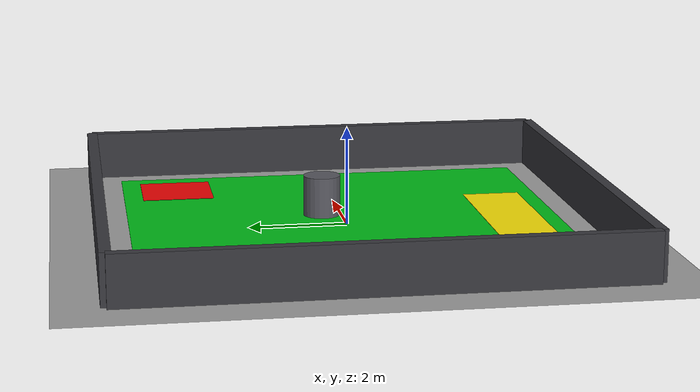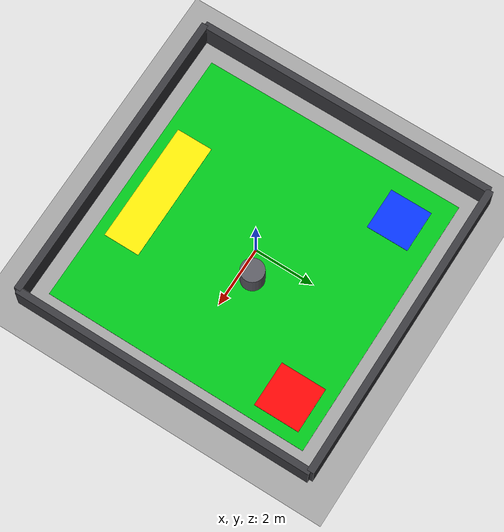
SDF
<?xml version="1.0"?>
<sdf version="1.6">
  <world name="open_room">
    <gravity>0 0 -9.8</gravity>
    <scene>
      <ambient>0.55 0.55 0.55 1</ambient>
      <background>0.78 0.82 0.86 1</background>
      <shadows>true</shadows>
    </scene>

    <light type="directional" name="sun">
      <cast_shadows>true</cast_shadows>
      <pose>0 0 12 0 0 0</pose>
      <diffuse>0.95 0.95 0.9 1</diffuse>
      <specular>0.15 0.15 0.15 1</specular>
      <direction>-0.35 0.25 -0.9</direction>
    </light>

    <model name="ground_plane">
      <static>true</static>
      <link name="link">
        <collision name="collision">
          <geometry><plane><normal>0 0 1</normal></plane></geometry>
          <surface>
            <friction><ode><mu>1.0</mu><mu2>1.0</mu2></ode></friction>
          </surface>
        </collision>
        <visual name="visual">
          <geometry><plane><normal>0 0 1</normal><size>80 80</size></plane></geometry>
          <material><ambient>0.62 0.62 0.62 1</ambient><diffuse>0.62 0.62 0.62 1</diffuse></material>
        </visual>
      </link>
    </model>

    <model name="green_main_floor_one_visit_area">
      <static>true</static>
      <pose>0 0 0.012 0 0 0</pose>
      <link name="link">
        <visual name="visual">
          <geometry><box><size>8.8 8.8 0.01</size></box></geometry>
          <material><ambient>0.0 0.75 0.1 1</ambient><diffuse>0.0 0.75 0.1 1</diffuse></material>
        </visual>
      </link>
    </model>

    <model name="yellow_front_door_high_priority_strip">
      <static>true</static>
      <pose>0 -3.45 0.018 0 0 0</pose>
      <link name="link">
        <visual name="visual">
          <geometry><box><size>4.0 1.2 0.01</size></box></geometry>
          <material><ambient>1.0 0.9 0.02 1</ambient><diffuse>1.0 0.9 0.02 1</diffuse></material>
        </visual>
      </link>
    </model>

    <model name="blue_checked_start_patch">
      <static>true</static>
      <pose>-3.1 3.1 0.02 0 0 0</pose>
      <link name="link">
        <visual name="visual">
          <geometry><box><size>1.4 1.4 0.01</size></box></geometry>
          <material><ambient>0.02 0.2 1.0 1</ambient><diffuse>0.02 0.2 1.0 1</diffuse></material>
        </visual>
      </link>
    </model>

    <model name="red_cctv_corner_skip_zone">
      <static>true</static>
      <pose>3.25 3.25 0.022 0 0 0</pose>
      <link name="link">
        <visual name="visual">
          <geometry><box><size>1.5 1.5 0.01</size></box></geometry>
          <material><ambient>0.95 0.02 0.02 1</ambient><diffuse>0.95 0.02 0.02 1</diffuse></material>
        </visual>
      </link>
    </model>

    <model name="outer_north">
      <static>true</static>
      <pose>0 5.0 0.500 0 0 0</pose>
      <link name="link">
        <collision name="collision"><geometry><box><size>10 0.22 1.0</size></box></geometry></collision>
        <visual name="visual"><geometry><box><size>10 0.22 1.0</size></box></geometry><material><ambient>0.22 0.22 0.24 1</ambient><diffuse>0.22 0.22 0.24 1</diffuse></material></visual>
      </link>
    </model>

    <model name="outer_south">
      <static>true</static>
      <pose>0 -5.0 0.500 0 0 0</pose>
      <link name="link">
        <collision name="collision"><geometry><box><size>10 0.22 1.0</size></box></geometry></collision>
        <visual name="visual"><geometry><box><size>10 0.22 1.0</size></box></geometry><material><ambient>0.22 0.22 0.24 1</ambient><diffuse>0.22 0.22 0.24 1</diffuse></material></visual>
      </link>
    </model>

    <model name="outer_east">
      <static>true</static>
      <pose>5.0 0 0.500 0 0 1.5708</pose>
      <link name="link">
        <collision name="collision"><geometry><box><size>10 0.22 1.0</size></box></geometry></collision>
        <visual name="visual"><geometry><box><size>10 0.22 1.0</size></box></geometry><material><ambient>0.22 0.22 0.24 1</ambient><diffuse>0.22 0.22 0.24 1</diffuse></material></visual>
      </link>
    </model>

    <model name="outer_west">
      <static>true</static>
      <pose>-5.0 0 0.500 0 0 1.5708</pose>
      <link name="link">
        <collision name="collision"><geometry><box><size>10 0.22 1.0</size></box></geometry></collision>
        <visual name="visual"><geometry><box><size>10 0.22 1.0</size></box></geometry><material><ambient>0.22 0.22 0.24 1</ambient><diffuse>0.22 0.22 0.24 1</diffuse></material></visual>
      </link>
    </model>

    <model name="single_lidar_obstacle_column">
      <static>true</static>
      <pose>0.8 0.4 0.425 0 0 0</pose>
      <link name="link">
        <collision name="collision"><geometry><cylinder><radius>0.38</radius><length>0.85</length></cylinder></geometry></collision>
        <visual name="visual"><geometry><cylinder><radius>0.38</radius><length>0.85</length></cylinder></geometry><material><ambient>0.35 0.35 0.38 1</ambient><diffuse>0.35 0.35 0.38 1</diffuse></material></visual>
      </link>
    </model>

  </world>
</sdf>
